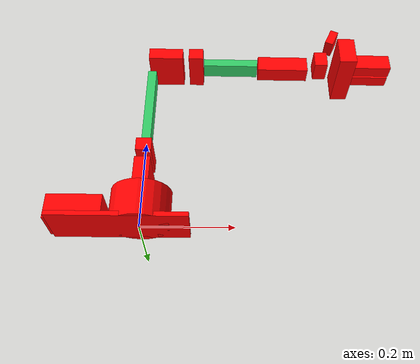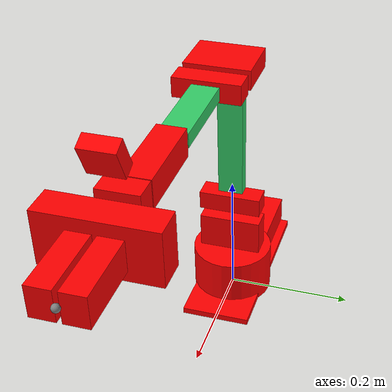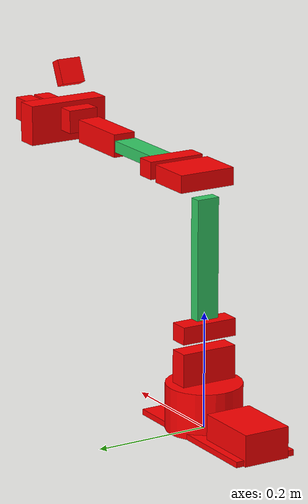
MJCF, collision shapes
<mujoco model="aloha">
    <compiler angle="radian" meshdir="assets" autolimits="true" />
    <asset>
        <material name="black" rgba="0.15 0.15 0.15 1" />

        <mesh file="vx300s_1_base.stl" scale="0.001 0.001 0.001" />
        <mesh file="vx300s_2_shoulder.stl" scale="0.001 0.001 0.001" />
        <mesh file="vx300s_3_upper_arm.stl" scale="0.001 0.001 0.001" />
        <mesh file="vx300s_4_upper_forearm.stl" scale="0.001 0.001 0.001" />
        <mesh file="vx300s_5_lower_forearm.stl" scale="0.001 0.001 0.001" />
        <mesh file="vx300s_6_wrist.stl" scale="0.001 0.001 0.001" />
        <mesh file="vx300s_7_gripper_prop.stl" />
        <mesh file="vx300s_7_gripper_bar.stl" />
        <mesh file="vx300s_7_gripper_wrist_mount.stl" />
        <mesh file="vx300s_8_custom_finger_left.stl" />
        <mesh file="vx300s_8_custom_finger_right.stl" />
        <mesh file="custom_vx300s_3_upper_arm_part1.stl" />
        <mesh file="custom_vx300s_3_upper_arm_part2.stl" />
        <mesh file="custom_vx300s_3_upper_forearm_part1.stl" />
        <mesh file="custom_vx300s_3_upper_forearm_part2.stl" />

        <mesh file="d405_solid.stl" />
    </asset>

    <default>
        <default class="vx300s">
            <joint axis="0 1 0" actuatorfrcrange="-35 35" actuatorgravcomp="true" />
            <motor ctrlrange="-35 35" />
            <site group="1" />
            <default class="waist">
                <joint axis="0 0 1" range="-3.14158 3.14158" damping="5.76" />
                <position ctrlrange="-3.14158 3.14158" kp="43" forcerange="-35 35" />
            </default>
            <default class="shoulder">
                <joint range="-1.85005 1.25664" armature="0.395" frictionloss="2.0" damping="20.0"
                    actuatorfrcrange="-144 144" />
                <position ctrlrange="-1.85005 1.25664" kp="265" forcerange="-144 144" />
            </default>
            <default class="elbow">
                <joint range="-1.76278 1.6057" armature="0.383" frictionloss="1.15" damping="18.49"
                    actuatorfrcrange="-59 59" />
                <position ctrlrange="-1.76278 1.6057" kp="227" forcerange="-59 59" />
            </default>
            <default class="forearm_roll">
                <joint axis="1 0 0" range="-3.14158 3.14158" armature="0.14" damping="6.78"
                    actuatorfrcrange="-22 22" />
                <position ctrlrange="-3.14158 3.14158" kp="78" forcerange="-22 22" />
            </default>
            <default class="wrist_angle">
                <joint range="-1.8675 2.23402" armature="0.008" damping="6.28"
                    actuatorfrcrange="-35 35" />
                <position ctrlrange="-1.8675 2.23402" kp="37" forcerange="-35 35" />
            </default>
            <default class="wrist_rotate">
                <joint axis="1 0 0" range="-3.14158 3.14158" damping="1.2"
                    actuatorfrcrange="-35 35" />
                <position ctrlrange="-3.14158 3.14158" kp="10.4" forcerange="-35 35" />
            </default>
            <default class="finger">
                <joint type="slide" armature="0.243" damping="40"
                    actuatorfrcrange="-35 35" />
                <motor ctrlrange="-35 35" />
                <position ctrlrange="0.002 0.037" kp="2000" kv="124" forcerange="-35 35" />
                <default class="left_finger">
                    <joint range="0 0.041" axis="0 0 -1" />
                </default>
                <default class="right_finger">
                    <joint range="0 0.041" axis="0 0 -1" />
                </default>
            </default>
            <default class="visual">
                <geom type="mesh" mass="0" group="2" material="black" contype="0" conaffinity="0" />
            </default>
            <default class="collision">
                <geom group="3" type="mesh" condim="6" friction="1 5e-3 5e-4" solref=".01 1" />
                <default class="sphere_collision">
                    <geom type="sphere" size="0.0006" rgba="1 0 0 1" />
                </default>
            </default>
        </default>
    </default>

    <worldbody>
        <light mode="targetbodycom" target="gripper_link" pos="-.5 .7 2.5" cutoff="55" />

        <body name="base_link" childclass="vx300s">
            <geom quat="1 0 0 1" class="visual" mesh="vx300s_1_base" />
            <geom type="cylinder" size="0.065 0.04" pos="0 0 0.04" class="collision"
                rgba="1 0
            0 1" mass="0.5" />
            <geom type="box" size="0.145 0.055 0.005" pos="-0.04 0 0.005" class="collision"
                rgba="1 0 0 1" mass="0.069034" />
            <geom type="box" size="0.058 0.041 0.027" pos="-0.132 0 0.027" class="collision"
                rgba="1 0 0 1" mass="0.4" />
            <body name="shoulder_link" pos="0 0 0.079">
                <joint name="waist" class="waist" />
                <geom pos="0 0 -0.003" quat="1 0 0 1" class="visual" mesh="vx300s_2_shoulder" />
                <geom pos="0.0005 0 0.033" rgba='1 0 0 1' type="box" size="0.017 0.05 0.0285"
                    class="collision" mass="0.798614" />
                <body name="upper_arm_link" pos="0 0 0.04805">
                    <geom pos="0.0005 0 0.045" rgba='1 0 0 1' type="box" size="0.017 0.05 0.015"
                        class="collision" mass="0.1" name="upper_arm_link_motor_housing" />
                    <joint name="shoulder" class="shoulder" />
                    <geom quat="1 0 0 1" class="visual" mesh="custom_vx300s_3_upper_arm_part1"
                    />
                    <geom quat="1 0 0 1" class="visual" mesh="custom_vx300s_3_upper_arm_part2"
                        name="upper_arm_connector" />
                    <geom type="box" size="0.01 0.02 0.103" pos="0 0 0.167" density="100"
                        rgba="0.2 0.8 0.4 1" name="upper_arm_extension" class="collision" />

                    <geom pos="0.033 0 0.3" rgba='1 0 0 1' type="box"
                        size="0.04 0.05 0.015"
                        class="collision" mass="0" name="upper_forearm_link_motor_housing" />
                    <body name="upper_forearm_link" pos="0.05955 0 0.3">
                        <geom pos="0.045 0 0.0005 " rgba='1 0 0 1' type="box"
                            size="0.017 0.05 0.015"
                            class="collision" mass="0" name="upper_forearm_link_connector" />
                        <joint name="elbow" class="elbow" />
                        <geom class="visual" mesh="custom_vx300s_3_upper_forearm_part1" mass="0.05" />
                        <geom class="visual" mesh="custom_vx300s_3_upper_forearm_part2"
                            name="upper_forearm_connector" mass="0.05" />
                        <geom type="box" size="0.064685 0.02 0.01" pos="0.128684 0 0" density="100"
                            rgba="0.2 0.8 0.4 1" name="upper_forearm_extension" class="collision" />
                        <body name="lower_forearm_link" pos="0.2 0 0">
                            <joint name="forearm_roll" class="forearm_roll" />
                            <geom quat="0 1 0 0" class="visual" mesh="vx300s_5_lower_forearm" />
                            <geom type="box" size="0.06 0.02 0.02" pos="0.056 0 0.0" rgba="1 0 0 1"
                                mass="0.414823" class="collision" />
                            <body name="wrist_link" pos="0.1 0 0">
                                <inertial pos="0.046743 -7.6652e-06 0.010565"
                                    quat="-0.00100191 0.544586 0.0026583 0.8387"
                                    mass="0.115395"
                                    diaginertia="5.45707e-05 4.63101e-05 4.32692e-05" />
                                <joint name="wrist_angle" class="wrist_angle" />
                                <geom quat="1 0 0 1" class="visual" mesh="vx300s_6_wrist" mass="0" />
                                <geom type="box" size="0.0155 0.027 0.02" pos="0.05 0 0.012"
                                    rgba="1 0 0 1"
                                    mass="0.115395"
                                    class="collision" />
                                <body name="gripper_link" euler="0 1.57 -1.57" pos="0.104744 0 0">
                                    <joint name="wrist_rotate" class="wrist_rotate" axis="0 0 1" />
                                    <geom type="box" size="0.073 0.035 0.02"
                                        pos="0 0 0"
                                        rgba="1 0 0 1"
                                        class="collision" mass="0.22158" />
                                    <geom type="box" size="0.022 0.022 0.01"
                                        pos="0.0 -0.088 -0.02"
                                        euler="-0.43 0 0"
                                        rgba="1 0 0 1"
                                        mass="0.2"
                                        class="collision" />
                                    <geom class="visual" mesh="vx300s_7_gripper_prop" />
                                    <geom class="visual" mesh="vx300s_7_gripper_bar" />
                                    <geom class="visual" pos="0 -0.03525 -0.0227"
                                        quat="0 -1 0 -1" type="mesh"
                                        mesh="vx300s_7_gripper_wrist_mount" />
                                    <geom class="visual" pos="0 -0.0824748 -0.0095955"
                                        quat="0 0 -0.21644 -0.976296"
                                        type="mesh" mesh="d405_solid" />
                                    <site name="end_effector_target" pos="0 0 0.113"
                                        group="1" />
                                    <camera name="wrist_cam_left" pos="0 -0.0824748 -0.0095955"
                                        mode="fixed"
                                        euler="2.70525955359 0 0"
                                        focal="1.93e-3 1.93e-3" resolution="1280 720"
                                        sensorsize="3896e-6 2140e-6" />
                                    <body name="left_finger_link"
                                        pos="0.028 -0.0141637 0.0211727"
                                        quat="1 -1 -1 1">
                                        <inertial pos="0.0143478 -0.0284791 0.0122897"
                                            quat="0.535486 0.458766 -0.450407 0.547651"
                                            mass="0.0862937"
                                            diaginertia="5.86848e-05 4.46887e-05 1.8397e-05" />
                                        <geom pos="0.0141637 0.0211727 0.06" class="visual"
                                            quat="1 1 1 -1"
                                            type="mesh"
                                            mesh="vx300s_8_custom_finger_left" />
                                        <geom type="box" size="0.02 0.045 0.015"
                                            pos="0.015 -0.045 0.01"
                                            euler="0 0 0"
                                            rgba="1 0 0 1"
                                            mass="0.0862937" class="collision" />
                                    </body>
                                    <body name="right_finger_link"
                                        pos="-0.028 -0.0141637 0.0211727"
                                        quat="1 1 1 1">
                                        <inertial pos="0.0143711 0.0284792 0.0121421"
                                            quat="0.461317 0.537615 -0.545478 0.447894"
                                            mass="0.0862932"
                                            diaginertia="5.86828e-05 4.46887e-05 1.83949e-05" />
                                        <geom pos="0.0141637 -0.0211727 0.0597067"
                                            class="visual" quat="1 -1 -1 -1"
                                            type="mesh"
                                            mesh="vx300s_8_custom_finger_right" />
                                        <geom type="box" size="0.02 0.045 0.015"
                                            pos="0.015 0.045 0.01"
                                            euler="0 0 0"
                                            rgba="1 0 0 1"
                                            mass="0.0862932" class="collision" />
                                    </body>
                                </body>
                            </body>
                        </body>
                    </body>
                </body>
            </body>
        </body>
    </worldbody>

    <include
        file="joint_position_actuators.xml" />
    <include
        file="keyframe_ctrl.xml" />
</mujoco>

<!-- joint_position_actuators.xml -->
<mujoco>
  <actuator>
    <position class="waist" name="waist" joint="waist" />
    <position class="shoulder" name="shoulder" joint="shoulder" />
    <position class="elbow" name="elbow" joint="elbow" />
    <position class="forearm_roll" name="forearm_roll" joint="forearm_roll" />
    <position class="wrist_angle" name="wrist_angle" joint="wrist_angle" />
    <position class="wrist_rotate" name="wrist_rotate" joint="wrist_rotate" />
  </actuator>
</mujoco>

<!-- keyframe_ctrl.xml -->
<mujoco>
  <keyframe>
    <key name="home" qpos="0 -0.96 1.16 0 -0.3 0"
      ctrl="0 -0.96 1.16 0 -0.3 0" />
  </keyframe>
</mujoco>
